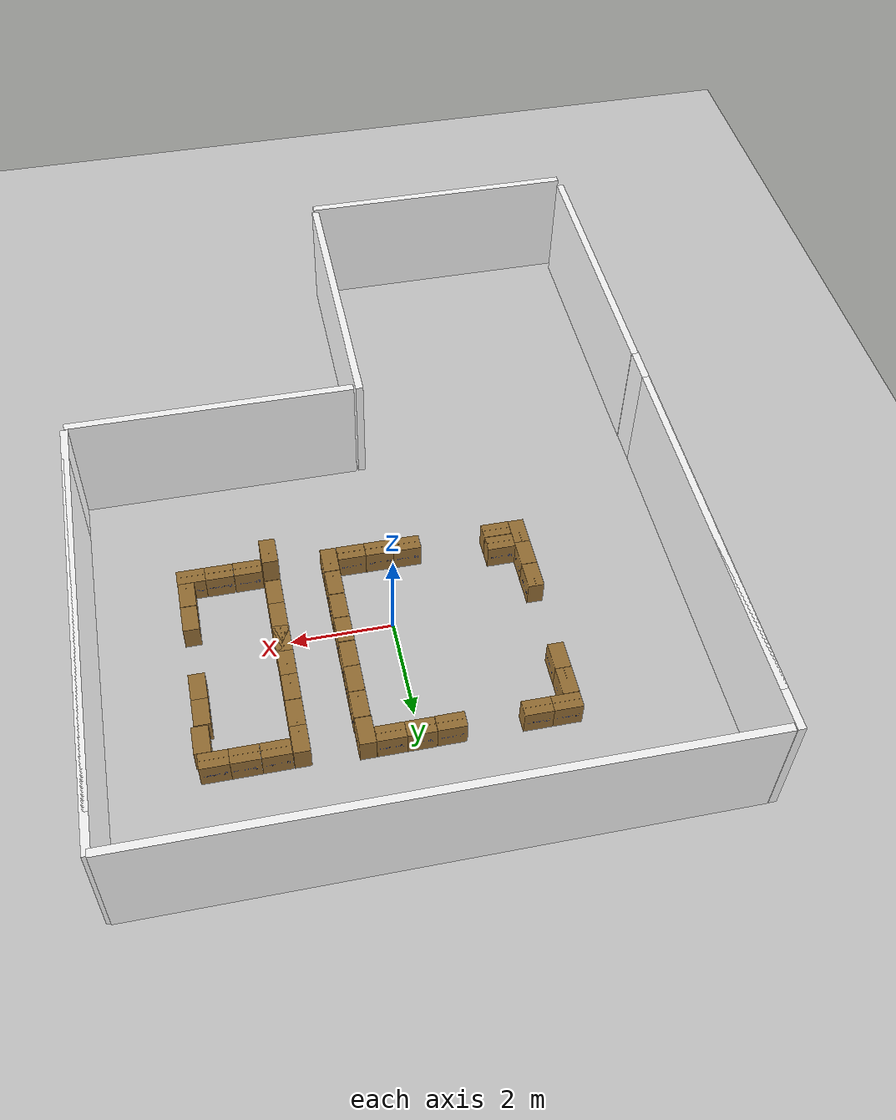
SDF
<sdf version="1.9">
 <world name="default">
  <physics name="1ms" type="ignored">
   <max_step_size>0.01</max_step_size>
   <real_time_factor>1</real_time_factor>
   <real_time_update_rate>100</real_time_update_rate>
  </physics>
  <plugin name="ignition::gazebo::systems::Physics" filename="ignition-gazebo-physics-system"/>
  <plugin name="ignition::gazebo::systems::UserCommands" filename="ignition-gazebo-user-commands-system"/>
  <plugin name="ignition::gazebo::systems::SceneBroadcaster" filename="ignition-gazebo-scene-broadcaster-system"/>
  <plugin name="ignition::gazebo::systems::Contact" filename="ignition-gazebo-contact-system"/>
  <gravity>0 0 -9.8</gravity>
  <magnetic_field>6e-06 2.3e-05 -4.2e-05</magnetic_field>
  <atmosphere type="adiabatic"/>
  <scene><ambient>0.4 0.4 0.4 1</ambient><background>0.7 0.7 0.7 1</background><shadows>true</shadows></scene>
  <audio><device>default</device></audio>
  <model name="ground_plane">
   <static>true</static>
   <link name="link">
    <collision name="collision">
     <geometry><plane><normal>0 0 1</normal><size>100 100</size></plane></geometry>
    </collision>
    <visual name="visual">
     <geometry><plane><normal>0 0 1</normal><size>100 100</size></plane></geometry>
     <material>
      <ambient>0.8 0.8 0.8 1</ambient>
      <diffuse>0.8 0.8 0.8 1</diffuse>
      <specular>0.8 0.8 0.8 1</specular>
     </material>
    </visual>
    <inertial>
     <mass>1</mass>
     <inertia><ixx>1</ixx><ixy>0</ixy><ixz>0</ixz><iyy>1</iyy><iyz>0</iyz><izz>1</izz></inertia>
    </inertial>
   </link>
  </model>
  <model name="office_env_w2">
   <pose>0 4.95791 1.25 0 -0 0</pose>
   <link name="Wall_10">
    <visual name="Wall_10_Visual_0">
     <geometry><box><size>11.466 0.15 2.5</size></box></geometry>
     <material><ambient>0.2 0.2 0.2 1</ambient><diffuse>1 1 1 1</diffuse><specular>1 1 1 1</specular></material>
     <meta><layer>0</layer></meta>
    </visual>
    <collision name="Wall_10_Collision_0"><geometry><box><size>11.466 0.15 2.5</size></box></geometry></collision>
    <inertial>
     <mass>1</mass>
     <inertia><ixx>1</ixx><ixy>0</ixy><ixz>0</ixz><iyy>1</iyy><iyz>0</iyz><izz>1</izz></inertia>
    </inertial>
   </link>
   <static>true</static>
  </model>
  <model name="office_env_w">
   <pose>5.73367 0.847832 1.25 0 -0 1.57</pose>
   <link name="Wall_10">
    <visual name="Wall_10_Visual_0">
     <geometry><box><size>8.324 0.15 2.5</size></box></geometry>
     <material><ambient>0.2 0.2 0.2 1</ambient><diffuse>1 1 1 1</diffuse><specular>1 1 1 1</specular></material>
     <meta><layer>0</layer></meta>
    </visual>
    <collision name="Wall_10_Collision_0"><geometry><box><size>8.324 0.15 2.5</size></box></geometry></collision>
    <inertial>
     <mass>1</mass>
     <inertia><ixx>1</ixx><ixy>0</ixy><ixz>0</ixz><iyy>1</iyy><iyz>0</iyz><izz>1</izz></inertia>
    </inertial>
   </link>
   <static>true</static>
  </model>
  <model name="office_env_w3">
   <pose>2.8655 -4.162 1.25 0 -0 0</pose>
   <link name="Wall_10">
    <visual name="Wall_10_Visual_0">
     <geometry><box><size>5.733 0.15 2.5</size></box></geometry>
     <material><ambient>0.2 0.2 0.2 1</ambient><diffuse>1 1 1 1</diffuse><specular>1 1 1 1</specular></material>
     <meta><layer>0</layer></meta>
    </visual>
    <collision name="Wall_10_Collision_0"><geometry><box><size>5.733 0.15 2.5</size></box></geometry></collision>
    <inertial>
     <mass>1</mass>
     <inertia><ixx>1</ixx><ixy>0</ixy><ixz>0</ixz><iyy>1</iyy><iyz>0</iyz><izz>1</izz></inertia>
    </inertial>
   </link>
   <static>true</static>
  </model>
  <model name="office_env_w3_clone">
   <pose>-0.116895 -6.96099 1.25 0 -0 1.57</pose>
   <link name="Wall_10">
    <visual name="Wall_10_Visual_0">
     <geometry><box><size>5.733 0.15 2.5</size></box></geometry>
     <material><ambient>0.2 0.2 0.2 1</ambient><diffuse>1 1 1 1</diffuse><specular>1 1 1 1</specular></material>
     <meta><layer>0</layer></meta>
    </visual>
    <collision name="Wall_10_Collision_0"><geometry><box><size>5.733 0.15 2.5</size></box></geometry></collision>
    <inertial>
     <mass>1</mass>
     <inertia><ixx>1</ixx><ixy>0</ixy><ixz>0</ixz><iyy>1</iyy><iyz>0</iyz><izz>1</izz></inertia>
    </inertial>
   </link>
   <static>true</static>
  </model>
  <model name="office_env_w_clone">
   <pose>-5.82885 0.866541 1.25 0 -0 1.57</pose>
   <link name="Wall_10">
    <visual name="Wall_10_Visual_0">
     <geometry><box><size>8.324 0.15 2.5</size></box></geometry>
     <material><ambient>0.2 0.2 0.2 1</ambient><diffuse>1 1 1 1</diffuse><specular>1 1 1 1</specular></material>
     <meta><layer>0</layer></meta>
    </visual>
    <collision name="Wall_10_Collision_0"><geometry><box><size>8.324 0.15 2.5</size></box></geometry></collision>
    <inertial>
     <mass>1</mass>
     <inertia><ixx>1</ixx><ixy>0</ixy><ixz>0</ixz><iyy>1</iyy><iyz>0</iyz><izz>1</izz></inertia>
    </inertial>
   </link>
   <static>true</static>
  </model>
  <model name="office_env_w3_clone_clone">
   <pose>-5.82695 -6.85682 1.25 0 -0 1.57</pose>
   <link name="Wall_10">
    <visual name="Wall_10_Visual_0">
     <geometry><box><size>5.733 0.15 2.5</size></box></geometry>
     <material><ambient>0.2 0.2 0.2 1</ambient><diffuse>1 1 1 1</diffuse><specular>1 1 1 1</specular></material>
     <meta><layer>0</layer></meta>
    </visual>
    <collision name="Wall_10_Collision_0"><geometry><box><size>5.733 0.15 2.5</size></box></geometry></collision>
    <inertial>
     <mass>1</mass>
     <inertia><ixx>1</ixx><ixy>0</ixy><ixz>0</ixz><iyy>1</iyy><iyz>0</iyz><izz>1</izz></inertia>
    </inertial>
   </link>
   <static>true</static>
  </model>
  <model name="office_env_w3_clone_0">
   <pose>-2.96341 -9.9742 1.25 0 -0 0</pose>
   <link name="Wall_10">
    <visual name="Wall_10_Visual_0">
     <geometry><box><size>5.733 0.15 2.5</size></box></geometry>
     <material><ambient>0.2 0.2 0.2 1</ambient><diffuse>1 1 1 1</diffuse><specular>1 1 1 1</specular></material>
     <meta><layer>0</layer></meta>
    </visual>
    <collision name="Wall_10_Collision_0"><geometry><box><size>5.733 0.15 2.5</size></box></geometry></collision>
    <inertial>
     <mass>1</mass>
     <inertia><ixx>1</ixx><ixy>0</ixy><ixz>0</ixz><iyy>1</iyy><iyz>0</iyz><izz>1</izz></inertia>
    </inertial>
   </link>
   <static>true</static>
  </model>
  <model name="neobotix_box">
   <include><uri>model://neo_office_box</uri></include>
   <pose>3.9 2.13819 0.289901 0 -0 0</pose>
  </model>
  <model name="neobotix_box_2">
   <include><uri>model://neo_office_box</uri></include>
   <pose>3.8441 1.0174 0.2899 0 -0 0</pose>
  </model>
  <model name="neobotix_box_3">
   <include><uri>model://neo_office_box</uri></include>
   <pose>3.72859 2.58 0.294325 0 -0 1.57</pose>
  </model>
  <model name="neobotix_box_3_1">
   <include><uri>model://neo_office_box</uri></include>
   <pose>3.83946 -0.539023 0.2899 0 -0 0</pose>
  </model>
  <model name="neobotix_box_3_1_1">
   <include><uri>model://neo_office_box</uri></include>
   <pose>3.83835 -1.10136 0.2899 0 -0 0</pose>
  </model>
  <model name="neobotix_box_3_2">
   <include><uri>model://neo_office_box</uri></include>
   <pose>3.17414 2.58 0.294325 0 -0 1.57</pose>
  </model>
  <model name="neobotix_box_3_2_1">
   <include><uri>model://neo_office_box</uri></include>
   <pose>2.61416 2.57785 0.294325 0 -0 1.57</pose>
  </model>
  <model name="neobotix_box_3_2_2">
   <include><uri>model://neo_office_box</uri></include>
   <pose>3.72429 -1.53119 0.294325 0 -0 1.57</pose>
  </model>
  <model name="neobotix_box_3_2_2_1">
   <include><uri>model://neo_office_box</uri></include>
   <pose>3.17712 -1.52963 0.294325 0 -0 1.57</pose>
  </model>
  <model name="neobotix_box_3_2_2_1_1">
   <include><uri>model://neo_office_box</uri></include>
   <pose>3.17712 -1.52963 0.294325 0 -0 1.57</pose>
  </model>
  <model name="neobotix_box_3_2_2_1_1_1">
   <include><uri>model://neo_office_box</uri></include>
   <pose>2.61748 -1.53101 0.294325 0 -0 1.57</pose>
  </model>
  <model name="neobotix_box_3_1_1_1">
   <include><uri>model://neo_office_box</uri></include>
   <pose>2.17786 -1.4122 0.86811 0 -0 0</pose>
  </model>
  <model name="neobotix_box_3_1_1_2">
   <include><uri>model://neo_office_box</uri></include>
   <pose>2.17688 -0.850632 0.2899 0 -0 0</pose>
  </model>
  <model name="neobotix_box_3_1_1_3">
   <include><uri>model://neo_office_box</uri></include>
   <pose>2.17646 -0.303069 0.2899 0 -0 0</pose>
  </model>
  <model name="neobotix_box_3_1_1_4">
   <include><uri>model://neo_office_box</uri></include>
   <pose>2.17697 0.234524 0.2899 0 -0 0</pose>
  </model>
  <model name="neobotix_box_3_1_1_4_1">
   <include><uri>model://neo_office_box</uri></include>
   <pose>2.17187 0.271358 0.2899 0 -0 0</pose>
  </model>
  <model name="neobotix_box_3_1_1_4_1_1">
   <include><uri>model://neo_office_box</uri></include>
   <pose>2.16949 0.815161 0.2899 0 -0 0</pose>
  </model>
  <model name="neobotix_box_3_1_1_4_1_2">
   <include><uri>model://neo_office_box</uri></include>
   <pose>2.16867 1.34652 0.2899 0 -0 0</pose>
  </model>
  <model name="neobotix_box_3_1_1_4_1_2_1">
   <include><uri>model://neo_office_box</uri></include>
   <pose>2.16985 1.90775 0.2899 0 -0 0</pose>
  </model>
  <model name="neobotix_box_3_1_1_4_1_2_2">
   <include><uri>model://neo_office_box</uri></include>
   <pose>2.16833 2.45961 0.2899 0 -0 0</pose>
  </model>
  <model name="neobotix_box_3_1_1_1_1_1">
   <include><uri>model://neo_office_box</uri></include>
   <pose>1.00216 -0.851081 0.2899 0 -0 0</pose>
  </model>
  <model name="neobotix_box_3_1_1_1_1_1_1">
   <include><uri>model://neo_office_box</uri></include>
   <pose>1.00471 -0.287494 0.2899 0 -0 0</pose>
  </model>
  <model name="neobotix_box_3_1_1_1_1_1_1_1">
   <include><uri>model://neo_office_box</uri></include>
   <pose>1.00198 0.272766 0.2899 0 -0 0</pose>
  </model>
  <model name="neobotix_box_3_1_1_1_1_1_1_1_2">
   <include><uri>model://neo_office_box</uri></include>
   <pose>1.00198 1.39551 0.2899 0 -0 0</pose>
  </model>
  <model name="neobotix_box_3_1_1_1_1_1_1_1_2_1">
   <include><uri>model://neo_office_box</uri></include>
   <pose>1.00198 0.838156 0.2899 0 -0 0</pose>
  </model>
  <model name="neobotix_box_3_1_1_1_1_1_1_1_2_2">
   <include><uri>model://neo_office_box</uri></include>
   <pose>1.00149 1.95419 0.2899 0 -0 0</pose>
  </model>
  <model name="neobotix_box_3_1_1_1_1_1_1_1_2_2_1">
   <include><uri>model://neo_office_box</uri></include>
   <pose>0.993277 2.5178 0.2899 0 -0 0</pose>
  </model>
  <model name="neobotix_box_3_2_1_1_1">
   <include><uri>model://neo_office_box</uri></include>
   <pose>0.004919 2.63842 0.294325 0 -0 1.57</pose>
  </model>
  <model name="neobotix_box_3_2_1_1_1_1">
   <include><uri>model://neo_office_box</uri></include>
   <pose>-2.15716 2.63489 0.294325 0 -0 1.57</pose>
  </model>
  <model name="ground_plane_1">
   <static>true</static>
   <link name="link">
    <collision name="collision">
     <geometry><plane><normal>0 0 1</normal><size>100 100</size></plane></geometry>
    </collision>
    <visual name="visual">
     <geometry><plane><normal>0 0 1</normal><size>100 100</size></plane></geometry>
     <material>
      <ambient>0.8 0.8 0.8 1</ambient>
      <diffuse>0.8 0.8 0.8 1</diffuse>
      <specular>0.8 0.8 0.8 1</specular>
     </material>
    </visual>
    <inertial>
     <mass>1</mass>
     <inertia><ixx>1</ixx><ixy>0</ixy><ixz>0</ixz><iyy>1</iyy><iyz>0</iyz><izz>1</izz></inertia>
    </inertial>
   </link>
   <pose>-0.115089 -1.42822 0 0 -0 0</pose>
  </model>
  <model name="neobotix_box_3_2_1_1_2_1">
   <include><uri>model://neo_office_box</uri></include>
   <pose>0.001747 -1.52761 0.294325 0 -0 1.57</pose>
  </model>
  <model name="neobotix_box_3_2_1_1_2_1_1">
   <include><uri>model://neo_office_box</uri></include>
   <pose>-2.4008 -1.20148 0.294325 0 -0 1.57</pose>
  </model>
  <model name="neobotix_box_3_2_1_1_2_1_1_1">
   <include><uri>model://neo_office_box</uri></include>
   <pose>-0.557713 -1.52582 0.294325 0 -0 1.57</pose>
  </model>
  <model name="neobotix_box_3_2_1_1_2_1_1_2">
   <include><uri>model://neo_office_box</uri></include>
   <pose>-2.39783 -1.52546 0.294325 0 -0 1.57</pose>
  </model>
  <model name="neobotix_box_3_1_1_1_1_2">
   <include><uri>model://neo_office_box</uri></include>
   <pose>-2.83415 1.63907 0.2899 0 -0 0</pose>
  </model>
  <model name="neobotix_box_3_1_1_1_1_2_1">
   <include><uri>model://neo_office_box</uri></include>
   <pose>-2.83415 -1.40321 0.2899 0 -0 0</pose>
  </model>
  <model name="neobotix_box_3_1_1_1_1_2_2">
   <include><uri>model://neo_office_box</uri></include>
   <pose>-2.83415 -0.848452 0.2899 0 -0 0</pose>
  </model>
  <model name="neobotix_box_3_2_1_1_1_1_1">
   <include><uri>model://neo_office_box</uri></include>
   <pose>-0.553211 2.6336 0.294325 0 -0 1.57</pose>
  </model>
  <model name="neobotix_box_3_2_1_1_1_1_2">
   <include><uri>model://neo_office_box</uri></include>
   <pose>-2.70912 2.63532 0.294325 0 -0 1.57</pose>
  </model>
  <model name="neobotix_box_3_1_1_1_1_2_3">
   <include><uri>model://neo_office_box</uri></include>
   <pose>-2.83415 -0.288183 0.2899 0 -0 0</pose>
  </model>
  <model name="neobotix_box_3_1_1_1_1_2_4">
   <include><uri>model://neo_office_box</uri></include>
   <pose>-2.83415 2.19461 0.2899 0 -0 0</pose>
  </model>
  <model name="neobotix_box_3_2_1_1_2_2">
   <include><uri>model://neo_office_box</uri></include>
   <pose>0.556968 -1.52968 0.294325 0 -0 1.57</pose>
  </model>
  <model name="neobotix_box_3_1_1_1_1_3">
   <include><uri>model://neo_office_box</uri></include>
   <pose>1 -1.4122 0.2899 0 -0 0</pose>
  </model>
  <model name="neobotix_box_3_1_1_1_2">
   <include><uri>model://neo_office_box</uri></include>
   <pose>2.17786 -1.4122 0.2899 0 -0 0</pose>
  </model>
  <model name="neobotix_box_3_2_1_1_3">
   <include><uri>model://neo_office_box</uri></include>
   <pose>0.556752 2.63727 0.294325 0 -0 1.57</pose>
  </model>
  <model name="office_env_w_1">
   <pose>5.73307 0.08924 1.25 0 -0 1.57</pose>
   <link name="Wall_10">
    <visual name="Wall_10_Visual_0">
     <geometry><box><size>8.324 0.15 2.5</size></box></geometry>
     <material><ambient>0.2 0.2 0.2 1</ambient><diffuse>1 1 1 1</diffuse><specular>1 1 1 1</specular></material>
     <meta><layer>0</layer></meta>
    </visual>
    <collision name="Wall_10_Collision_0"><geometry><box><size>8.324 0.15 2.5</size></box></geometry></collision>
    <inertial>
     <mass>1</mass>
     <inertia><ixx>1</ixx><ixy>0</ixy><ixz>0</ixz><iyy>1</iyy><iyz>0</iyz><izz>1</izz></inertia>
    </inertial>
   </link>
   <static>true</static>
  </model>
  <model name="office_env_w_clone_1">
   <pose>-5.82948 0.079903 1.25 0 -0 1.57</pose>
   <link name="Wall_10">
    <visual name="Wall_10_Visual_0">
     <geometry><box><size>8.324 0.15 2.5</size></box></geometry>
     <material><ambient>0.2 0.2 0.2 1</ambient><diffuse>1 1 1 1</diffuse><specular>1 1 1 1</specular></material>
     <meta><layer>0</layer></meta>
    </visual>
    <collision name="Wall_10_Collision_0"><geometry><box><size>8.324 0.15 2.5</size></box></geometry></collision>
    <inertial>
     <mass>1</mass>
     <inertia><ixx>1</ixx><ixy>0</ixy><ixz>0</ixz><iyy>1</iyy><iyz>0</iyz><izz>1</izz></inertia>
    </inertial>
   </link>
   <static>true</static>
  </model>
  <model name="neobotix_box_1_1">
   <include><uri>model://neo_office_box</uri></include>
   <pose>3.84411 1.57505 0.300478 0 -0 0</pose>
  </model>
  <light name="sun" type="directional">
   <pose>0 0 10 0 -0 0</pose>
   <intensity>1</intensity>
   <direction>-0.5 0.5 -1</direction>
   <diffuse>0.8 0.8 0.8 1</diffuse>
   <specular>0.2 0.2 0.2 1</specular>
   <attenuation>
    <range>1000</range>
    <linear>0.01</linear>
    <constant>0.90000000000000002</constant>
    <quadratic>0.001</quadratic>
   </attenuation>
   <spot><inner_angle>0</inner_angle><outer_angle>0</outer_angle><falloff>0</falloff></spot>
  </light>
 </world>
</sdf>

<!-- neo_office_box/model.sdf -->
<sdf version='1.6'>
  <model name='neobotix_box'>
    <link name='link_1'>
	    <inertial>
        <mass>2</mass>
        <pose frame=''>0 0 0 0 0 0</pose>
        <inertia>
          <ixx>0.1</ixx>
          <ixy>0</ixy>
          <ixz>0</ixz>
          <iyy>0.1</iyy>
          <iyz>0</iyz>
          <izz>0.1</izz>
        </inertia>
      </inertial>
      <pose frame=''>0 0 0 0 -0 0</pose>
      <visual name='visual'>
        <geometry>
          <mesh>
            <uri>meshes/model.dae</uri>
          </mesh>
        </geometry>
		    <meta><layer>1</layer></meta>
      </visual>
      <collision name='collision_0'>
        <laser_retro>0</laser_retro>
        <max_contacts>1</max_contacts>
        <pose frame=''>0 0 0 0 -0 0</pose>
        <geometry>
          <mesh>
            <uri>meshes/model.dae</uri>
          </mesh>
        </geometry>
		    <surface>
          <friction>
            <ode>
              <mu>0.04</mu>
              <mu2>0.04</mu2>
              <fdir1>0 0 0</fdir1>
              <slip1>0</slip1>
              <slip2>0</slip2>
            </ode>
            <torsional>
              <coefficient>1</coefficient>
              <patch_radius>0</patch_radius>
              <surface_radius>0</surface_radius>
              <use_patch_radius>0</use_patch_radius>
              <ode>
                <slip>0</slip>
              </ode>
            </torsional>
          </friction>
        </surface>
      </collision>
    </link>
    <static>true</static>
  </model>
</sdf>
